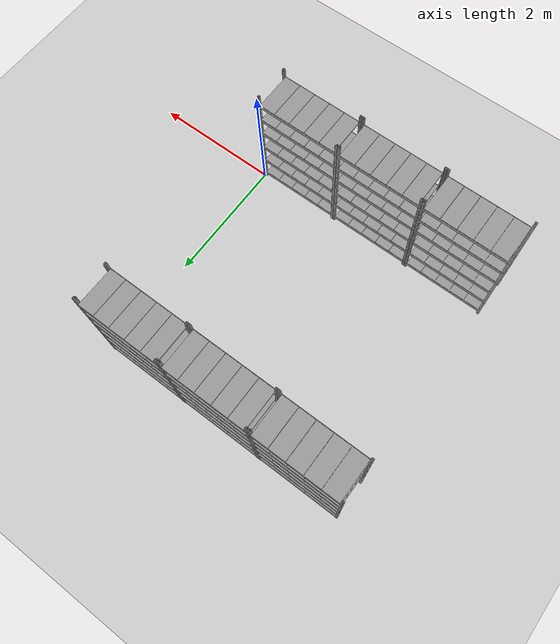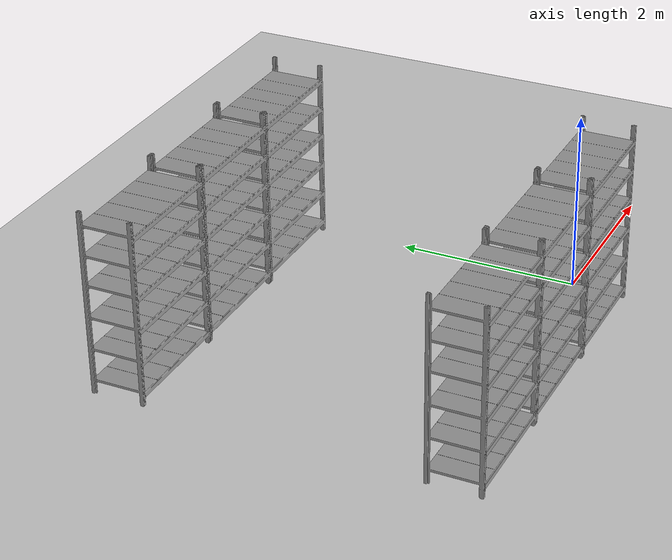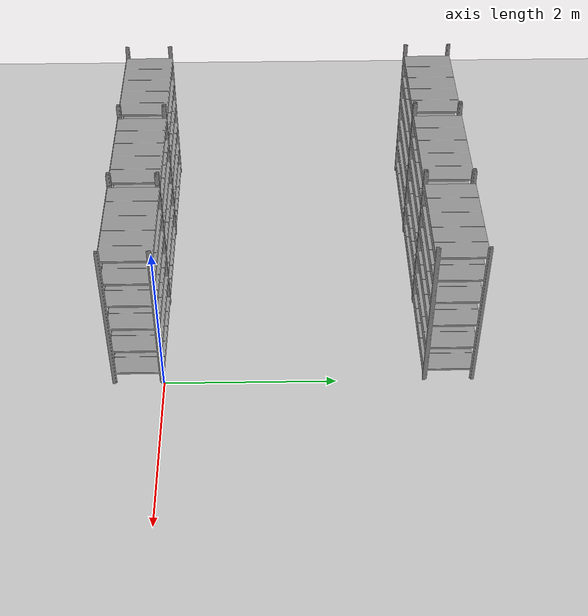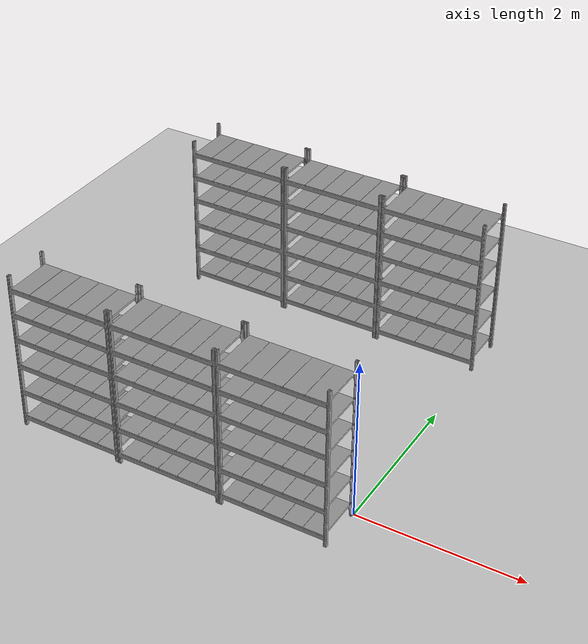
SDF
<sdf version="1.7">
 <world name="default">
  <light name="sun" type="directional">
   <pose>0 0 10 0 -0 0</pose>
   <diffuse>0.8 0.8 0.8 1</diffuse>
   <specular>0.2 0.2 0.2 1</specular>
   <attenuation>
    <range>1000</range>
    <constant>0.9</constant>
    <linear>0.01</linear>
    <quadratic>0.001</quadratic>
   </attenuation>
   <direction>-0.5 0.1 -0.9</direction>
   <spot><inner_angle>0</inner_angle><outer_angle>0</outer_angle><falloff>0</falloff></spot>
  </light>
  <model name="ground_plane">
   <static>1</static>
   <link name="link">
    <collision name="collision">
     <geometry><plane><normal>0 0 1</normal><size>100 100</size></plane></geometry>
     <surface>
      <contact><collide_bitmask>65535</collide_bitmask></contact>
      <friction><ode><mu>100</mu><mu2>50</mu2></ode></friction>
     </surface>
    </collision>
    <visual name="visual">
     <cast_shadows>0</cast_shadows>
     <geometry><plane><normal>0 0 1</normal><size>100 100</size></plane></geometry>
     <material>
      <script><uri>file://media/materials/scripts/gazebo.material</uri><name>Gazebo/Grey</name></script>
     </material>
    </visual>
   </link>
  </model>
  <gravity>0 0 -9.8</gravity>
  <magnetic_field>6e-06 2.3e-05 -4.2e-05</magnetic_field>
  <atmosphere type="adiabatic"/>
  <physics type="ode">
   <max_step_size>0.001</max_step_size>
   <real_time_factor>1</real_time_factor>
   <real_time_update_rate>1000</real_time_update_rate>
  </physics>
  <scene><ambient>0.4 0.4 0.4 1</ambient><background>0.7 0.7 0.7 1</background><shadows>1</shadows></scene>
  <audio><device>default</device></audio>
  <spherical_coordinates>
   <surface_model>EARTH_WGS84</surface_model>
   <latitude_deg>0</latitude_deg>
   <longitude_deg>0</longitude_deg>
   <elevation>0</elevation>
   <heading_deg>0</heading_deg>
  </spherical_coordinates>
  <model name="warehouse_racks_6">
   <link name="link_8">
    <inertial>
     <mass>1</mass>
     <inertia>
      <ixx>0.166667</ixx>
      <ixy>0</ixy>
      <ixz>0</ixz>
      <iyy>0.166667</iyy>
      <iyz>0</iyz>
      <izz>0.166667</izz>
     </inertia>
    </inertial>
    <pose>-4e-06 2e-06 -0 -0 -0 -0</pose>
    <visual name="visual">
     <geometry><mesh><uri>/home/ilya/Robot_markers/meshes/Стеллаж 6.stl</uri><scale>1 1 1</scale></mesh></geometry>
     <material>
      <lighting>1</lighting>
      <script><uri>file://media/materials/scripts/gazebo.material</uri><name>Gazebo/Grey</name></script>
      <shader type="pixel"/>
     </material>
    </visual>
    <collision name="collision">
     <geometry><mesh><uri>/home/ilya/Robot_markers/meshes/Стеллаж 6.stl</uri><scale>1 1 1</scale></mesh></geometry>
     <surface>
      <friction>
       <ode><mu>1</mu><mu2>1</mu2><fdir1>0 0 0</fdir1><slip1>0</slip1><slip2>0</slip2></ode>
       <torsional>
        <coefficient>1</coefficient>
        <patch_radius>0</patch_radius>
        <surface_radius>0</surface_radius>
        <use_patch_radius>1</use_patch_radius>
        <ode><slip>0</slip></ode>
       </torsional>
      </friction>
      <bounce><restitution_coefficient>0</restitution_coefficient><threshold>1e+06</threshold></bounce>
      <contact>
       <collide_without_contact>0</collide_without_contact>
       <collide_without_contact_bitmask>1</collide_without_contact_bitmask>
       <collide_bitmask>1</collide_bitmask>
       <ode>
        <soft_cfm>0</soft_cfm>
        <soft_erp>0.2</soft_erp>
        <kp>1e+13</kp>
        <kd>1</kd>
        <max_vel>0.01</max_vel>
        <min_depth>0</min_depth>
       </ode>
       <bullet>
        <split_impulse>1</split_impulse>
        <split_impulse_penetration_threshold>-0.01</split_impulse_penetration_threshold>
        <soft_cfm>0</soft_cfm>
        <soft_erp>0.2</soft_erp>
        <kp>1e+13</kp>
        <kd>1</kd>
       </bullet>
      </contact>
     </surface>
    </collision>
   </link>
   <static>1</static>
   <pose>-2.67 3.605 0 0 -0 0</pose>
  </model>
  <model name="warehouse_racks_5">
   <link name="link_7">
    <inertial>
     <mass>1</mass>
     <inertia>
      <ixx>0.166667</ixx>
      <ixy>0</ixy>
      <ixz>0</ixz>
      <iyy>0.166667</iyy>
      <iyz>0</iyz>
      <izz>0.166667</izz>
     </inertia>
    </inertial>
    <pose>-4e-06 4e-06 0 -0 -0 -0</pose>
    <visual name="visual">
     <geometry><mesh><uri>/home/ilya/Robot_markers/meshes/Стеллаж 6.stl</uri><scale>1 1 1</scale></mesh></geometry>
     <material>
      <lighting>1</lighting>
      <script><uri>file://media/materials/scripts/gazebo.material</uri><name>Gazebo/Grey</name></script>
      <shader type="pixel"/>
     </material>
    </visual>
    <collision name="collision">
     <geometry><mesh><uri>/home/ilya/Robot_markers/meshes/Стеллаж 6.stl</uri><scale>1 1 1</scale></mesh></geometry>
     <surface>
      <friction>
       <ode><mu>1</mu><mu2>1</mu2><fdir1>0 0 0</fdir1><slip1>0</slip1><slip2>0</slip2></ode>
       <torsional>
        <coefficient>1</coefficient>
        <patch_radius>0</patch_radius>
        <surface_radius>0</surface_radius>
        <use_patch_radius>1</use_patch_radius>
        <ode><slip>0</slip></ode>
       </torsional>
      </friction>
      <bounce><restitution_coefficient>0</restitution_coefficient><threshold>1e+06</threshold></bounce>
      <contact>
       <collide_without_contact>0</collide_without_contact>
       <collide_without_contact_bitmask>1</collide_without_contact_bitmask>
       <collide_bitmask>1</collide_bitmask>
       <ode>
        <soft_cfm>0</soft_cfm>
        <soft_erp>0.2</soft_erp>
        <kp>1e+13</kp>
        <kd>1</kd>
        <max_vel>0.01</max_vel>
        <min_depth>0</min_depth>
       </ode>
       <bullet>
        <split_impulse>1</split_impulse>
        <split_impulse_penetration_threshold>-0.01</split_impulse_penetration_threshold>
        <soft_cfm>0</soft_cfm>
        <soft_erp>0.2</soft_erp>
        <kp>1e+13</kp>
        <kd>1</kd>
       </bullet>
      </contact>
     </surface>
    </collision>
   </link>
   <static>1</static>
   <pose>-1.335 3.605 0 0 -0 0</pose>
  </model>
  <model name="warehouse_racks_3">
   <link name="link_5">
    <inertial>
     <mass>1</mass>
     <inertia>
      <ixx>0.166667</ixx>
      <ixy>0</ixy>
      <ixz>0</ixz>
      <iyy>0.166667</iyy>
      <iyz>0</iyz>
      <izz>0.166667</izz>
     </inertia>
    </inertial>
    <pose>-1e-06 0 0 0 -0 0</pose>
    <visual name="visual">
     <geometry><mesh><uri>/home/ilya/Robot_markers/meshes/Стеллаж 6.stl</uri><scale>1 1 1</scale></mesh></geometry>
     <material>
      <lighting>1</lighting>
      <script><uri>file://media/materials/scripts/gazebo.material</uri><name>Gazebo/Grey</name></script>
      <shader type="pixel"/>
     </material>
    </visual>
    <collision name="collision">
     <geometry><mesh><uri>/home/ilya/Robot_markers/meshes/Стеллаж 6.stl</uri><scale>1 1 1</scale></mesh></geometry>
     <surface>
      <friction>
       <ode><mu>1</mu><mu2>1</mu2><fdir1>0 0 0</fdir1><slip1>0</slip1><slip2>0</slip2></ode>
       <torsional>
        <coefficient>1</coefficient>
        <patch_radius>0</patch_radius>
        <surface_radius>0</surface_radius>
        <use_patch_radius>1</use_patch_radius>
        <ode><slip>0</slip></ode>
       </torsional>
      </friction>
      <bounce><restitution_coefficient>0</restitution_coefficient><threshold>1e+06</threshold></bounce>
      <contact>
       <collide_without_contact>0</collide_without_contact>
       <collide_without_contact_bitmask>1</collide_without_contact_bitmask>
       <collide_bitmask>1</collide_bitmask>
       <ode>
        <soft_cfm>0</soft_cfm>
        <soft_erp>0.2</soft_erp>
        <kp>1e+13</kp>
        <kd>1</kd>
        <max_vel>0.01</max_vel>
        <min_depth>0</min_depth>
       </ode>
       <bullet>
        <split_impulse>1</split_impulse>
        <split_impulse_penetration_threshold>-0.01</split_impulse_penetration_threshold>
        <soft_cfm>0</soft_cfm>
        <soft_erp>0.2</soft_erp>
        <kp>1e+13</kp>
        <kd>1</kd>
       </bullet>
      </contact>
     </surface>
    </collision>
   </link>
   <static>1</static>
   <pose>-2.67 0 0 0 -0 0</pose>
  </model>
  <model name="warehouse_racks_2">
   <link name="link_4">
    <inertial>
     <mass>1</mass>
     <inertia>
      <ixx>0.166667</ixx>
      <ixy>0</ixy>
      <ixz>0</ixz>
      <iyy>0.166667</iyy>
      <iyz>0</iyz>
      <izz>0.166667</izz>
     </inertia>
    </inertial>
    <pose>-3e-06 0 0 0 -0 0</pose>
    <visual name="visual">
     <geometry><mesh><uri>/home/ilya/Robot_markers/meshes/Стеллаж 6.stl</uri><scale>1 1 1</scale></mesh></geometry>
     <material>
      <lighting>1</lighting>
      <script><uri>file://media/materials/scripts/gazebo.material</uri><name>Gazebo/Grey</name></script>
      <shader type="pixel"/>
     </material>
    </visual>
    <collision name="collision">
     <geometry><mesh><uri>/home/ilya/Robot_markers/meshes/Стеллаж 6.stl</uri><scale>1 1 1</scale></mesh></geometry>
     <surface>
      <friction>
       <ode><mu>1</mu><mu2>1</mu2><fdir1>0 0 0</fdir1><slip1>0</slip1><slip2>0</slip2></ode>
       <torsional>
        <coefficient>1</coefficient>
        <patch_radius>0</patch_radius>
        <surface_radius>0</surface_radius>
        <use_patch_radius>1</use_patch_radius>
        <ode><slip>0</slip></ode>
       </torsional>
      </friction>
      <bounce><restitution_coefficient>0</restitution_coefficient><threshold>1e+06</threshold></bounce>
      <contact>
       <collide_without_contact>0</collide_without_contact>
       <collide_without_contact_bitmask>1</collide_without_contact_bitmask>
       <collide_bitmask>1</collide_bitmask>
       <ode>
        <soft_cfm>0</soft_cfm>
        <soft_erp>0.2</soft_erp>
        <kp>1e+13</kp>
        <kd>1</kd>
        <max_vel>0.01</max_vel>
        <min_depth>0</min_depth>
       </ode>
       <bullet>
        <split_impulse>1</split_impulse>
        <split_impulse_penetration_threshold>-0.01</split_impulse_penetration_threshold>
        <soft_cfm>0</soft_cfm>
        <soft_erp>0.2</soft_erp>
        <kp>1e+13</kp>
        <kd>1</kd>
       </bullet>
      </contact>
     </surface>
    </collision>
   </link>
   <static>1</static>
   <pose>-1.335 0 0 0 -0 0</pose>
  </model>
  <model name="warehouse_racks_1">
   <link name="link_3">
    <inertial>
     <mass>1</mass>
     <inertia>
      <ixx>0.166667</ixx>
      <ixy>0</ixy>
      <ixz>0</ixz>
      <iyy>0.166667</iyy>
      <iyz>0</iyz>
      <izz>0.166667</izz>
     </inertia>
    </inertial>
    <visual name="visual">
     <geometry><mesh><uri>/home/ilya/Robot_markers/meshes/Стеллаж 6.stl</uri><scale>1 1 1</scale></mesh></geometry>
     <material>
      <lighting>1</lighting>
      <script><uri>file://media/materials/scripts/gazebo.material</uri><name>Gazebo/Grey</name></script>
      <shader type="pixel"/>
     </material>
    </visual>
    <collision name="collision">
     <geometry><mesh><uri>/home/ilya/Robot_markers/meshes/Стеллаж 6.stl</uri><scale>1 1 1</scale></mesh></geometry>
     <surface>
      <friction>
       <ode><mu>1</mu><mu2>1</mu2><fdir1>0 0 0</fdir1><slip1>0</slip1><slip2>0</slip2></ode>
       <torsional>
        <coefficient>1</coefficient>
        <patch_radius>0</patch_radius>
        <surface_radius>0</surface_radius>
        <use_patch_radius>1</use_patch_radius>
        <ode><slip>0</slip></ode>
       </torsional>
      </friction>
      <bounce><restitution_coefficient>0</restitution_coefficient><threshold>1e+06</threshold></bounce>
      <contact>
       <collide_without_contact>0</collide_without_contact>
       <collide_without_contact_bitmask>1</collide_without_contact_bitmask>
       <collide_bitmask>1</collide_bitmask>
       <ode>
        <soft_cfm>0</soft_cfm>
        <soft_erp>0.2</soft_erp>
        <kp>1e+13</kp>
        <kd>1</kd>
        <max_vel>0.01</max_vel>
        <min_depth>0</min_depth>
       </ode>
       <bullet>
        <split_impulse>1</split_impulse>
        <split_impulse_penetration_threshold>-0.01</split_impulse_penetration_threshold>
        <soft_cfm>0</soft_cfm>
        <soft_erp>0.2</soft_erp>
        <kp>1e+13</kp>
        <kd>1</kd>
       </bullet>
      </contact>
     </surface>
    </collision>
   </link>
   <static>1</static>
  </model>
  <model name="warehouse_racks_4">
   <link name="link_6">
    <inertial>
     <mass>1</mass>
     <inertia>
      <ixx>0.166667</ixx>
      <ixy>0</ixy>
      <ixz>0</ixz>
      <iyy>0.166667</iyy>
      <iyz>0</iyz>
      <izz>0.166667</izz>
     </inertia>
    </inertial>
    <visual name="visual">
     <geometry><mesh><uri>/home/ilya/Robot_markers/meshes/Стеллаж 6.stl</uri><scale>1 1 1</scale></mesh></geometry>
     <material>
      <lighting>1</lighting>
      <script><uri>file://media/materials/scripts/gazebo.material</uri><name>Gazebo/Grey</name></script>
      <shader type="pixel"/>
     </material>
    </visual>
    <collision name="collision">
     <geometry><mesh><uri>/home/ilya/Robot_markers/meshes/Стеллаж 6.stl</uri><scale>1 1 1</scale></mesh></geometry>
     <surface>
      <friction>
       <ode><mu>1</mu><mu2>1</mu2><fdir1>0 0 0</fdir1><slip1>0</slip1><slip2>0</slip2></ode>
       <torsional>
        <coefficient>1</coefficient>
        <patch_radius>0</patch_radius>
        <surface_radius>0</surface_radius>
        <use_patch_radius>1</use_patch_radius>
        <ode><slip>0</slip></ode>
       </torsional>
      </friction>
      <bounce><restitution_coefficient>0</restitution_coefficient><threshold>1e+06</threshold></bounce>
      <contact>
       <collide_without_contact>0</collide_without_contact>
       <collide_without_contact_bitmask>1</collide_without_contact_bitmask>
       <collide_bitmask>1</collide_bitmask>
       <ode>
        <soft_cfm>0</soft_cfm>
        <soft_erp>0.2</soft_erp>
        <kp>1e+13</kp>
        <kd>1</kd>
        <max_vel>0.01</max_vel>
        <min_depth>0</min_depth>
       </ode>
       <bullet>
        <split_impulse>1</split_impulse>
        <split_impulse_penetration_threshold>-0.01</split_impulse_penetration_threshold>
        <soft_cfm>0</soft_cfm>
        <soft_erp>0.2</soft_erp>
        <kp>1e+13</kp>
        <kd>1</kd>
       </bullet>
      </contact>
     </surface>
    </collision>
   </link>
   <static>1</static>
   <pose>0 3.605 0 0 -0 0</pose>
  </model>
 </world>
</sdf>
